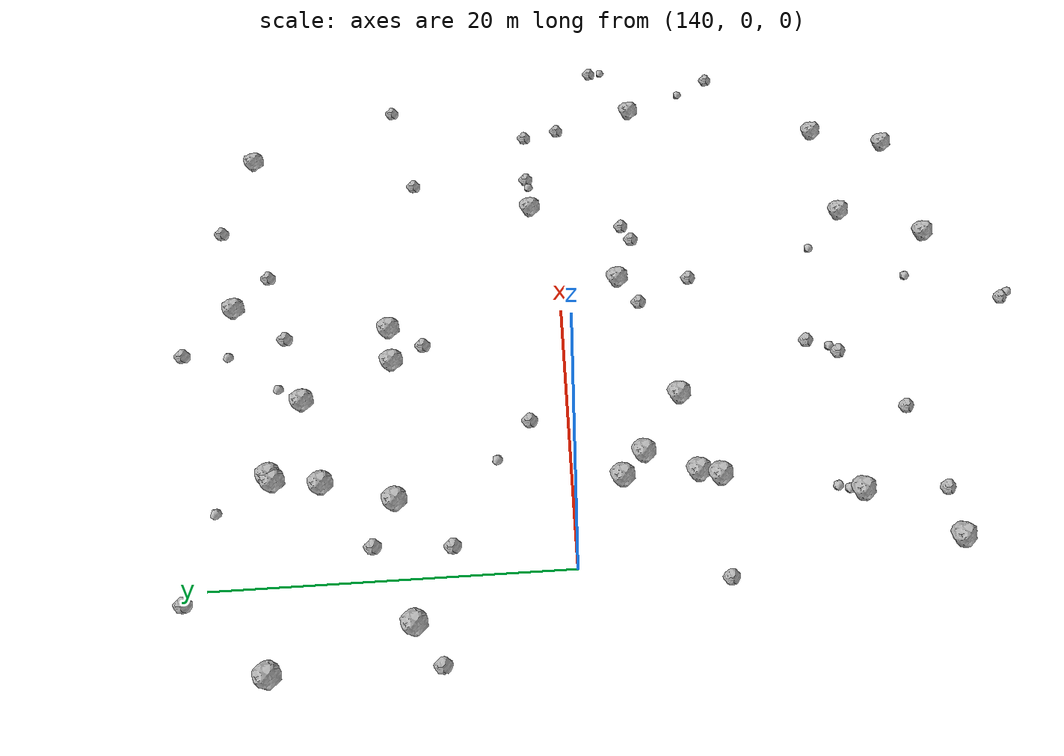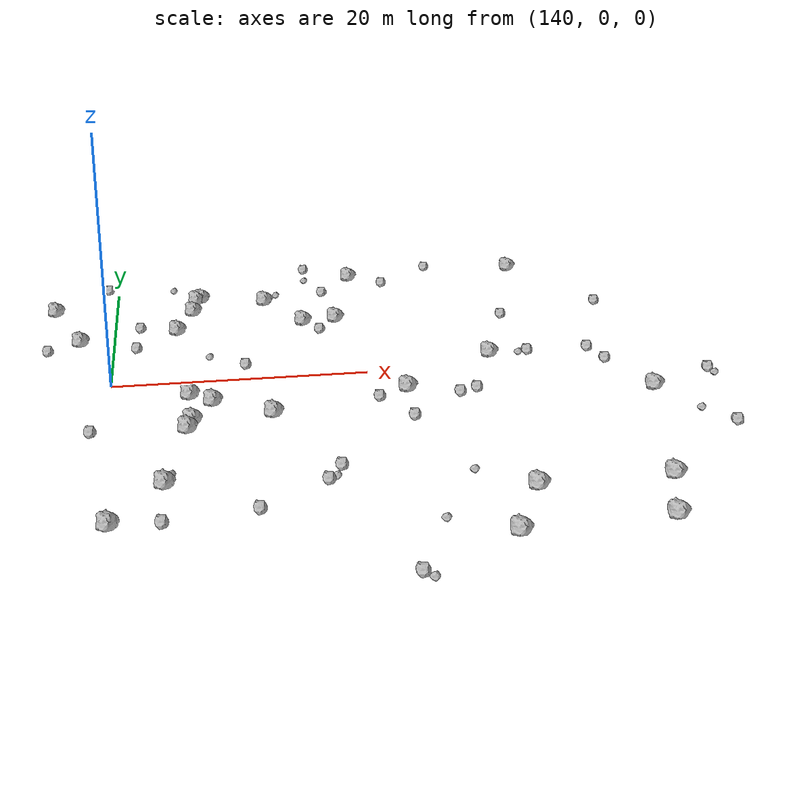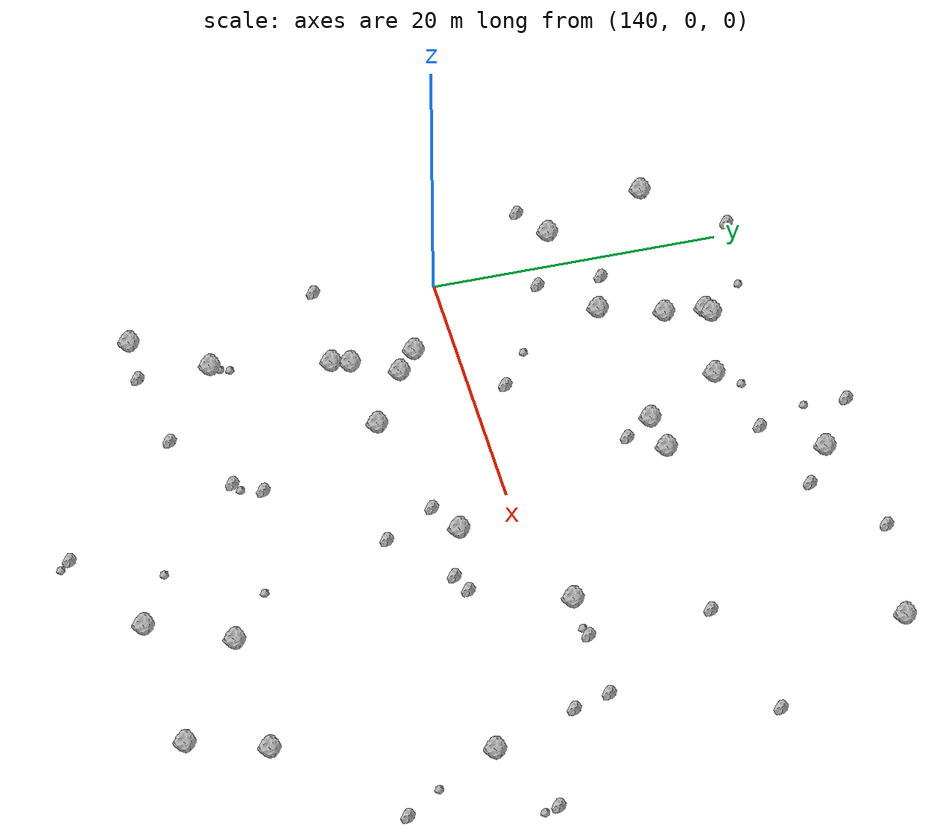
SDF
<sdf version="1.6">
 <world name="default">
  <include><uri>model://sun</uri></include>
  <model name="rock1_4_2">
   <include><uri>model://rock1</uri><pose>153.03430206563226 16.32261153673094 0.5 0 0 0</pose></include>
  </model>
  <model name="rock1_4_3">
   <include><uri>model://rock1</uri><pose>162.6092814057798 -3.8545929197444053 0.5 0 0 0</pose></include>
  </model>
  <model name="rock1_4_4">
   <include><uri>model://rock1</uri><pose>176.99641464057373 22.41032745398722 0.5 0 0 0</pose></include>
  </model>
  <model name="rock1_4_5">
   <include><uri>model://rock1</uri><pose>137.20228378267535 8.78091052367484 0.5 0 0 0</pose></include>
  </model>
  <model name="rock1_4_6">
   <include><uri>model://rock1</uri><pose>146.6408727641967 14.565951587318168 0.5 0 0 0</pose></include>
  </model>
  <model name="rock1_4_7">
   <include><uri>model://rock1</uri><pose>168.45179845667212 -20.25348521682965 0.5 0 0 0</pose></include>
  </model>
  <model name="rock1_4_8">
   <include><uri>model://rock1</uri><pose>145.21557019097838 10.253003372209342 0.5 0 0 0</pose></include>
  </model>
  <model name="rock1_4_9">
   <include><uri>model://rock1</uri><pose>158.8564590309283 11.36283617747307 0.5 0 0 0</pose></include>
  </model>
  <model name="rock1_4_10">
   <include><uri>model://rock1</uri><pose>140.5600738244647 -21.504073989376582 0.5 0 0 0</pose></include>
  </model>
  <model name="rock1_4_11">
   <include><uri>model://rock1</uri><pose>147.43662415007088 17.662199791527193 0.5 0 0 0</pose></include>
  </model>
  <model name="rock1_4_12">
   <include><uri>model://rock1</uri><pose>152.04502693919886 -6.875301832436435 0.5 0 0 0</pose></include>
  </model>
  <model name="rock1_4_13">
   <include><uri>model://rock1</uri><pose>176.1546479990677 -25.19162210959335 0.5 0 0 0</pose></include>
  </model>
  <model name="rock1_4_14">
   <include><uri>model://rock1</uri><pose>134.70109199168178 16.096443939567642 0.5 0 0 0</pose></include>
  </model>
  <model name="rock1_4_15">
   <include><uri>model://rock1</uri><pose>161.35478574180695 21.65842864926097 0.5 0 0 0</pose></include>
  </model>
  <model name="rock1_4_16">
   <include><uri>model://rock1</uri><pose>145.9904971766116 -2.8933202902196804 0.5 0 0 0</pose></include>
  </model>
  <model name="rock1_4_17">
   <include><uri>model://rock1</uri><pose>177.91469060358 -20.059964862744557 0.5 0 0 0</pose></include>
  </model>
  <model name="rock1_4_18">
   <include><uri>model://rock1</uri><pose>165.82059280977165 -25.73062953288227 0.5 0 0 0</pose></include>
  </model>
  <model name="rock1_4_19">
   <include><uri>model://rock1</uri><pose>144.0652965233704 -16.64301256617659 0.5 0 0 0</pose></include>
  </model>
  <model name="rock1_4_20">
   <include><uri>model://rock1</uri><pose>181.51673652890594 -6.191519255870585 0.5 0 0 0</pose></include>
  </model>
  <model name="rock1_4_21">
   <include><uri>model://rock1</uri><pose>170.35691550507065 1.8663089044529393 0.5 0 0 0</pose></include>
  </model>
  <model name="rock1_4_22">
   <include><uri>model://rock1</uri><pose>145.70939052987848 -8.588264809379051 0.5 0 0 0</pose></include>
  </model>
  <model name="rock1_4_23">
   <include><uri>model://rock1</uri><pose>146.99473905368467 17.362314698673238 0.5 0 0 0</pose></include>
  </model>
  <model name="rock1_4_24">
   <include><uri>model://rock1</uri><pose>155.99239233893374 11.01618356087858 0.5 0 0 0</pose></include>
  </model>
  <model name="rock1_4_25">
   <include><uri>model://rock1</uri><pose>146.07432328771347 -7.346560878064171 0.5 0 0 0</pose></include>
  </model>
  <model name="rock1_4_26">
   <include><uri>model://rock1</uri><pose>147.67378868803274 -4.282367151838034 0.5 0 0 0</pose></include>
  </model>
  <model name="rock2_4_0">
   <include><uri>model://rock2</uri><pose>162.26305522054946 -8.660829858499419 0.3 0 0 0</pose></include>
  </model>
  <model name="rock2_4_1">
   <include><uri>model://rock2</uri><pose>173.33745491508196 10.35075714032238 0.3 0 0 0</pose></include>
  </model>
  <model name="rock2_4_2">
   <include><uri>model://rock2</uri><pose>150.50862993039289 2.3884227098010413 0.3 0 0 0</pose></include>
  </model>
  <model name="rock2_4_3">
   <include><uri>model://rock2</uri><pose>157.1999304633915 9.095816790659995 0.3 0 0 0</pose></include>
  </model>
  <model name="rock2_4_4">
   <include><uri>model://rock2</uri><pose>141.8474825255926 6.87263439638032 0.3 0 0 0</pose></include>
  </model>
  <model name="rock2_4_5">
   <include><uri>model://rock2</uri><pose>154.873416299083 -17.43251856779534 0.3 0 0 0</pose></include>
  </model>
  <model name="rock2_4_6">
   <include><uri>model://rock2</uri><pose>158.97242032514376 -29.259025972857586 0.3 0 0 0</pose></include>
  </model>
  <model name="rock2_4_7">
   <include><uri>model://rock2</uri><pose>186.86786131242786 -3.411926748241733 0.3 0 0 0</pose></include>
  </model>
  <model name="rock2_4_8">
   <include><uri>model://rock2</uri><pose>142.10140927455197 11.29724770870552 0.3 0 0 0</pose></include>
  </model>
  <model name="rock2_4_9">
   <include><uri>model://rock2</uri><pose>143.8697376016384 -21.574789053517048 0.3 0 0 0</pose></include>
  </model>
  <model name="rock2_4_10">
   <include><uri>model://rock2</uri><pose>182.5074661418291 12.421982505662442 0.3 0 0 0</pose></include>
  </model>
  <model name="rock2_4_11">
   <include><uri>model://rock2</uri><pose>167.85223880469078 -4.5221907363064915 0.3 0 0 0</pose></include>
  </model>
  <model name="rock2_4_12">
   <include><uri>model://rock2</uri><pose>166.43585653662697 -5.116614774915796 0.3 0 0 0</pose></include>
  </model>
  <model name="rock2_4_13">
   <include><uri>model://rock2</uri><pose>150.07041914008593 -20.672448632262963 0.3 0 0 0</pose></include>
  </model>
  <model name="rock2_4_14">
   <include><uri>model://rock2</uri><pose>164.18153045225554 19.782177543824332 0.3 0 0 0</pose></include>
  </model>
  <model name="rock2_4_15">
   <include><uri>model://rock2</uri><pose>160.1990011781864 -5.103652468153136 0.3 0 0 0</pose></include>
  </model>
  <model name="rock2_4_16">
   <include><uri>model://rock2</uri><pose>139.12598081900003 21.13038285171656 0.3 0 0 0</pose></include>
  </model>
  <model name="rock2_4_17">
   <include><uri>model://rock2</uri><pose>173.53988581983475 2.0753815390593218 0.3 0 0 0</pose></include>
  </model>
  <model name="rock2_4_18">
   <include><uri>model://rock2</uri><pose>155.96296361540197 -15.56237155729439 0.3 0 0 0</pose></include>
  </model>
  <model name="rock2_4_19">
   <include><uri>model://rock2</uri><pose>134.66545988130127 7.212248772203118 0.3 0 0 0</pose></include>
  </model>
  <model name="rock2_4_20">
   <include><uri>model://rock2</uri><pose>178.6223373385525 2.092292787686418 0.3 0 0 0</pose></include>
  </model>
  <model name="rock2_4_21">
   <include><uri>model://rock2</uri><pose>157.31136955238762 24.328957382024797 0.3 0 0 0</pose></include>
  </model>
  <model name="rock2_4_22">
   <include><uri>model://rock2</uri><pose>138.80438883394874 -8.247704214573545 0.3 0 0 0</pose></include>
  </model>
  <model name="rock2_4_23">
   <include><uri>model://rock2</uri><pose>158.37194998913665 17.992042938523788 0.3 0 0 0</pose></include>
  </model>
  <model name="rock2_4_24">
   <include><uri>model://rock2</uri><pose>179.34096612614235 -0.4163808560910134 0.3 0 0 0</pose></include>
  </model>
  <model name="rock2_4_25">
   <include><uri>model://rock2</uri><pose>168.98561722227518 23.62592722071296 0.3 0 0 0</pose></include>
  </model>
  <model name="rock2_4_26">
   <include><uri>model://rock2</uri><pose>185.35276716334593 -12.817615624244482 0.3 0 0 0</pose></include>
  </model>
  <model name="rock3_4_0">
   <include><uri>model://rock3</uri><pose>144.26743893568644 -15.991191799194864 0.2 0 0 0</pose></include>
  </model>
  <model name="rock3_4_1">
   <include><uri>model://rock3</uri><pose>154.1469999925857 17.885427657283003 0.2 0 0 0</pose></include>
  </model>
  <model name="rock3_4_2">
   <include><uri>model://rock3</uri><pose>144.9637006868442 20.28185590761742 0.2 0 0 0</pose></include>
  </model>
  <model name="rock3_4_3">
   <include><uri>model://rock3</uri><pose>144.49291551251704 -15.347165801579148 0.2 0 0 0</pose></include>
  </model>
  <model name="rock3_4_4">
   <include><uri>model://rock3</uri><pose>147.70614156384823 4.346074489346869 0.2 0 0 0</pose></include>
  </model>
  <model name="rock3_4_5">
   <include><uri>model://rock3</uri><pose>187.07794567637143 -4.373368886589994 0.2 0 0 0</pose></include>
  </model>
  <model name="rock3_4_6">
   <include><uri>model://rock3</uri><pose>172.7662954761368 1.874554125116692 0.2 0 0 0</pose></include>
  </model>
  <model name="rock3_4_7">
   <include><uri>model://rock3</uri><pose>157.09198194298435 21.397495501753696 0.2 0 0 0</pose></include>
  </model>
  <model name="rock3_4_8">
   <include><uri>model://rock3</uri><pose>164.74717754149265 -17.45631980446207 0.2 0 0 0</pose></include>
  </model>
  <model name="rock3_4_9">
   <include><uri>model://rock3</uri><pose>159.54971299351362 -29.960953380040312 0.2 0 0 0</pose></include>
  </model>
  <model name="rock3_4_10">
   <include><uri>model://rock3</uri><pose>183.61668713667711 -10.385545141338952 0.2 0 0 0</pose></include>
  </model>
  <model name="rock3_4_11">
   <include><uri>model://rock3</uri><pose>155.45925149678067 -17.02534192661943 0.2 0 0 0</pose></include>
  </model>
  <model name="rock3_4_12">
   <include><uri>model://rock3</uri><pose>161.573156890397 -23.48104605198142 0.2 0 0 0</pose></include>
  </model>
 </world>
</sdf>
